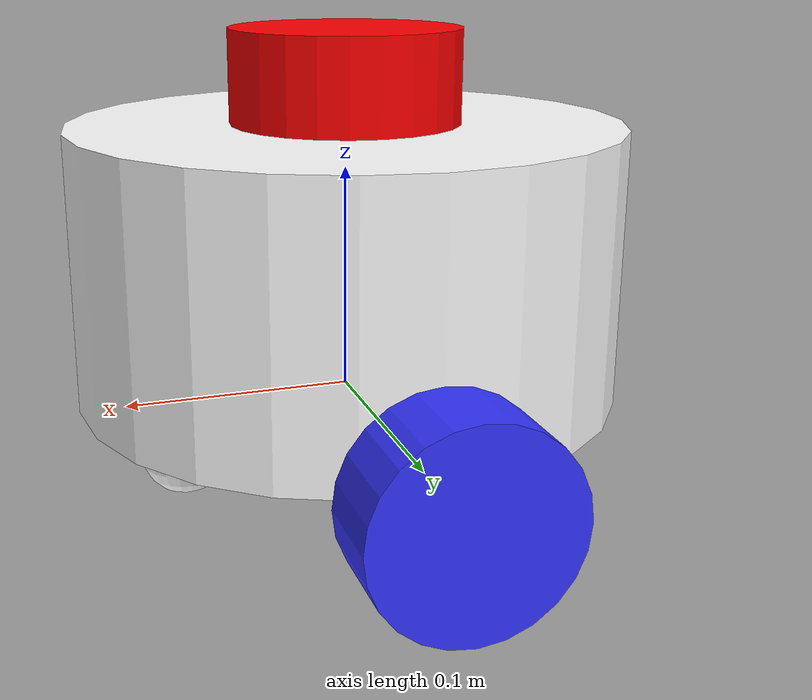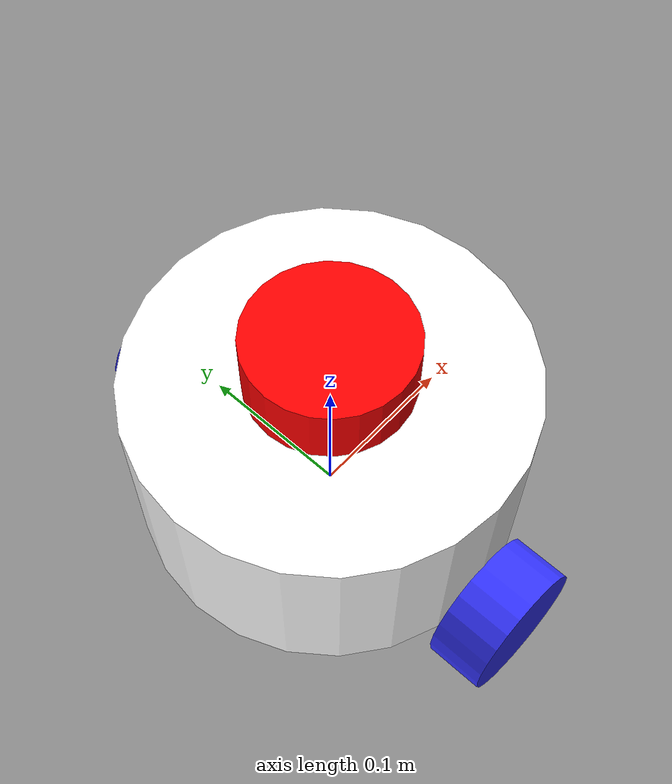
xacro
<?xml version="1.0"?>
<robot xmlns:xacro="http://www.ros.org/wiki/xacro"  name="robot">

    <xacro:arg name="use_ros2_control" default="true"/>
    <xacro:arg name="sim_mode" default="false"/>

    <xacro:include filename="robot_core.xacro" />

    <xacro:if value="$(arg use_ros2_control)">
        <xacro:include filename="ros2_control.xacro" />
    </xacro:if>
    <xacro:unless value="$(arg use_ros2_control)">
        <xacro:include filename="gazebo_control.xacro" />
    </xacro:unless>
</robot>

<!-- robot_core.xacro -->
<robot xmlns:xacro="http://www.ros.org/wiki/xacro">

    <xacro:include filename="inertial_macros.xacro" />

    <xacro:property name="mass_scale" value="0.01" />
    <xacro:property name="chassis_height" value="0.12" />
    <xacro:property name="chassis_radius" value="0.12" />
    <xacro:property name="chassis_mass" value="${0.02 * mass_scale}" />
    <xacro:property name="wheel_radius" value="0.0425" />
    <xacro:property name="wheel_thickness" value="0.036" />
    <xacro:property name="wheel_mass" value="${0.1 * mass_scale}" />
    <xacro:property name="wheel_offset_x" value="0" />
    <xacro:property name="wheel_offset_y" value="${0.275/2}" />
    <xacro:property name="wheel_offset_z" value="0" />
    <xacro:property name="caster_wheel_radius" value="0.02" />
    <xacro:property name="caster_wheel_mass" value="${0.02 * mass_scale}" />
    <xacro:property name="caster_wheel_offset_x" value="0.075" />
    <xacro:property name="caster_wheel_offset_z" value="${wheel_offset_z - wheel_radius + caster_wheel_radius}" />
    <xacro:property name="lidar_mass" value="${0.1 * mass_scale}" />
    <xacro:property name="lidar_radius" value="0.05" />
    <xacro:property name="lidar_height" value="0.04" />
    <xacro:property name="lidar_offset_x" value="0" />
    <xacro:property name="lidar_offset_z" value="${chassis_height+(lidar_height/2)}" />

    <material name="white">
        <color rgba="1 1 1 1" />
    </material>

    <material name="orange">
        <color rgba="1 0.3 0.1 1" />
    </material>

    <material name="blue">
        <color rgba="0.2 0.2 1 1" />
    </material>

    <material name="black">
        <color rgba="0 0 0 1" />
    </material>

    <material name="red">
        <color rgba="1 0 0 1" />
    </material>

    <!-- BASE LINK -->

    <link name="base_link">
    </link>

    <!-- BASE_FOOTPRINT LINK -->

    <joint name="base_footprint_joint" type="fixed">
        <parent link="base_link" />
        <child link="base_footprint" />
        <origin xyz="0 0 0" rpy="0 0 0" />
    </joint>

    <link name="base_footprint">
    </link>

    <!-- CHASSIS LINK -->

    <joint name="chassis_joint" type="fixed">
        <parent link="base_link" />
        <child link="chassis" />
        <origin xyz="${-wheel_offset_x} 0 ${-wheel_offset_z}" />
    </joint>

    <link name="chassis">
        <visual>
            <origin xyz="0 0 ${chassis_height/2}" />
            <geometry>
                <cylinder radius="${chassis_radius}" length="${chassis_height}" />
            </geometry>
            <material name="white" />
        </visual>

        <collision>
            <origin xyz="0 0 ${chassis_height/2}" />
            <geometry>
                <cylinder radius="${chassis_radius}" length="${chassis_height}" />
            </geometry>
        </collision>

        <xacro:inertial_cylinder mass="${chassis_mass}" radius="${chassis_radius}" length="${chassis_height}">
            <origin xyz="0 0 ${chassis_height/2}" rpy="0 0 0" />
        </xacro:inertial_cylinder>
    </link>

    <gazebo reference="chassis">
        <material>Gazebo/White</material>
    </gazebo>

    <!-- LEFT WHEEL LINK -->

    <joint name="left_wheel_joint" type="continuous">
        <parent link="base_link" />
        <child link="left_wheel" />
        <origin xyz="0 ${wheel_offset_y} 0" rpy="-${pi/2} 0 0" />
        <axis xyz="0 0 1" />
    </joint>

    <link name="left_wheel">
        <visual>
            <geometry>
                <cylinder radius="${wheel_radius}" length="${wheel_thickness}" />
            </geometry>
            <material name="blue" />
        </visual>
        <collision>
            <geometry>
                <sphere radius="${wheel_radius}" />
            </geometry>
        </collision>
        <xacro:inertial_cylinder mass="${wheel_mass}" length="${wheel_thickness}" radius="${wheel_radius}">
            <origin xyz="0 0 0" rpy="0 0 0" />
        </xacro:inertial_cylinder>
    </link>

    <gazebo reference="left_wheel">
        <material>Gazebo/Blue</material>
    </gazebo>

    <!-- RIGHT WHEEL LINK -->

    <joint name="right_wheel_joint" type="continuous">
        <parent link="base_link" />
        <child link="right_wheel" />
        <origin xyz="0 ${-wheel_offset_y} 0" rpy="${pi/2} 0 0" />
        <axis xyz="0 0 -1" />
    </joint>

    <link name="right_wheel">
        <visual>
            <geometry>
                <cylinder radius="${wheel_radius}" length="${wheel_thickness}" />
            </geometry>
            <material name="blue" />
        </visual>
        <collision>
            <geometry>
                <sphere radius="${wheel_radius}" />
            </geometry>
        </collision>
        <xacro:inertial_cylinder mass="${wheel_mass}" length="${wheel_thickness}" radius="${wheel_radius}">
            <origin xyz="0 0 0" rpy="0 0 0" />
        </xacro:inertial_cylinder>
    </link>

    <gazebo reference="right_wheel">
        <material>Gazebo/Blue</material>
    </gazebo>

    <!-- FRONT CASTER WHEEL LINK -->

    <joint name="front_caster_wheel_joint" type="fixed">
        <parent link="chassis" />
        <child link="front_caster_wheel" />
        <origin xyz="${caster_wheel_offset_x} 0 ${caster_wheel_offset_z}" />
    </joint>

    <link name="front_caster_wheel">
        <visual>
            <geometry>
                <sphere radius="${caster_wheel_radius}" />
            </geometry>
            <material name="white" />
        </visual>
        <collision>
            <geometry>
                <sphere radius="${caster_wheel_radius}" />
            </geometry>
        </collision>
        <xacro:inertial_sphere mass="${caster_wheel_mass}" radius="${caster_wheel_radius}">
            <origin xyz="0 0 0" rpy="0 0 0" />
        </xacro:inertial_sphere>
    </link>

    <gazebo reference="front_caster_wheel">
        <material>Gazebo/White</material>
        <mu1 value="0.0001" />
        <mu2 value="0.0001" />
    </gazebo>

    <!-- BACK CASTER WHEEL LINK -->

    <joint name="back_caster_wheel_joint" type="fixed">
        <parent link="chassis" />
        <child link="back_caster_wheel" />
        <origin xyz="${-caster_wheel_offset_x} 0 ${caster_wheel_offset_z}" />
    </joint>

    <link name="back_caster_wheel">
        <visual>
            <geometry>
                <sphere radius="${caster_wheel_radius}" />
            </geometry>
            <material name="white" />
        </visual>
        <collision>
            <geometry>
                <sphere radius="${caster_wheel_radius}" />
            </geometry>
        </collision>
        <xacro:inertial_sphere mass="${caster_wheel_mass}" radius="${caster_wheel_radius}">
            <origin xyz="0 0 0" rpy="0 0 0" />
        </xacro:inertial_sphere>
    </link>

    <gazebo reference="back_caster_wheel">
        <material>Gazebo/White</material>
        <mu1 value="0.0001" />
        <mu2 value="0.0001" />
    </gazebo>

    <!-- LIDAR -->

    <joint name="laser_joint" type="fixed">
        <parent link="chassis" />
        <child link="laser_frame" />
        <origin xyz="${lidar_offset_x} 0 ${lidar_offset_z}" rpy="0 0 0" />
    </joint>

    <link name="laser_frame">
        <visual>
            <origin xyz="0 0 0" />
            <geometry>
                <cylinder radius="${lidar_radius}" length="${lidar_height}" />
            </geometry>
            <material name="red" />
        </visual>

        <collision>
            <origin xyz="0 0 0" />
            <geometry>
                <cylinder radius="${lidar_radius}" length="${lidar_height}" />
            </geometry>
        </collision>

        <xacro:inertial_cylinder mass="${lidar_mass}" radius="${lidar_radius}" length="${lidar_height}">
            <origin xyz="0 0 0" rpy="0 0 0" />
        </xacro:inertial_cylinder>
    </link>

    <gazebo reference="laser_frame">
        <material>Gazebo/Red</material>

        <sensor name="laser" type="ray">
            <pose>0 0 0 0 0 0</pose>
            <visualize>false</visualize>
            <update_rate>10</update_rate>

            <ray>
                <scan>
                    <horizontal>
                        <samples>360</samples>
                        <resolution>1</resolution>
                        <min_angle>-${pi}</min_angle>
                        <max_angle>${pi}</max_angle>
                    </horizontal>
                </scan>

                <range>
                    <min>0.3</min>
                    <max>12</max>
                    <resolution>0.01</resolution>
                </range>
            </ray>

            <plugin name="laser_controller" filename="libgazebo_ros_ray_sensor.so">
                <!-- topic to publish to -->
                <ros>
                    <argument>--ros-args</argument>
                    <argument>--remap</argument>
                    <argument>~/out:=scan</argument>
                </ros>

                <output_type>sensor_msgs/LaserScan</output_type>
                <frame_name>laser_frame</frame_name>
            </plugin>

        </sensor>

    </gazebo>

</robot>
